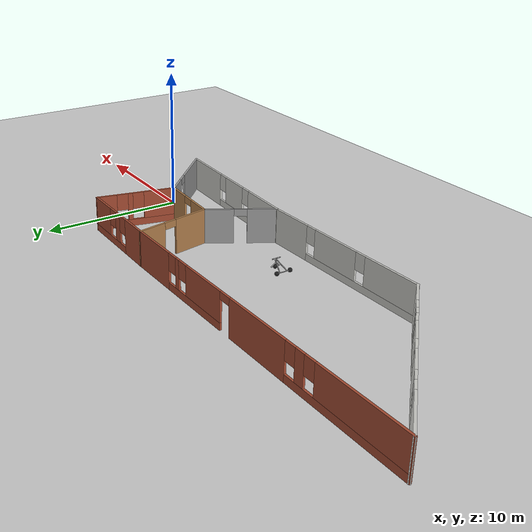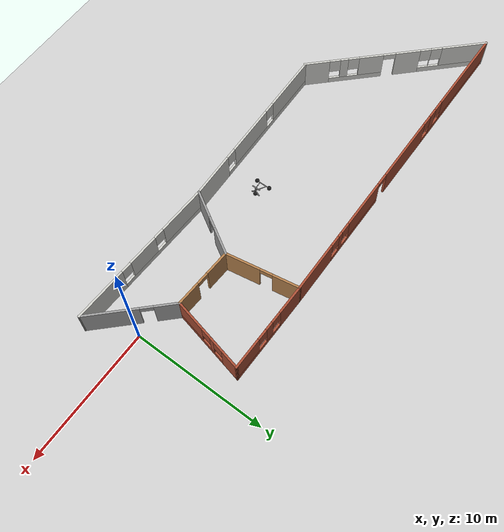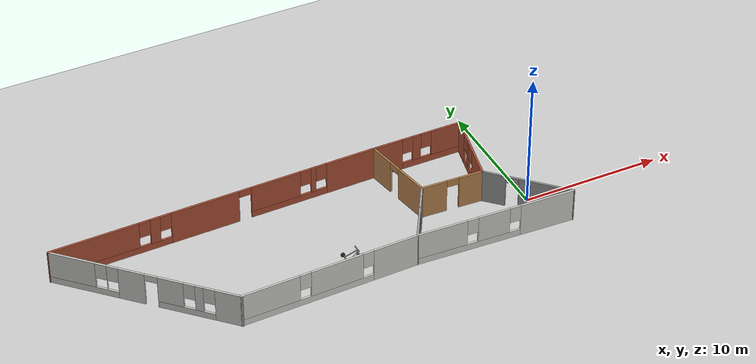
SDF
<sdf version="1.6">
 <world name="default">
  <model name="ground_plane">
   <static>1</static>
   <link name="link">
    <collision name="collision">
     <geometry><plane><normal>0 0 1</normal><size>100 100</size></plane></geometry>
     <surface>
      <contact><collide_bitmask>65535</collide_bitmask></contact>
      <friction><ode><mu>100</mu><mu2>50</mu2></ode></friction>
     </surface>
    </collision>
    <visual name="visual">
     <cast_shadows>0</cast_shadows>
     <geometry><plane><normal>0 0 1</normal><size>100 100</size></plane></geometry>
     <material>
      <script><uri>file://media/materials/scripts/gazebo.material</uri><name>Gazebo/Grey</name></script>
     </material>
    </visual>
   </link>
  </model>
  <model name="world2.world">
   <pose>-15.0932 1.90724 0 0 -0 0</pose>
   <link name="Wall_12">
    <pose>-4.95249 4.76552 0 0 0 -3.12282</pose>
    <visual name="Wall_12_Visual_0">
     <pose>-10.0777 0 1.25 0 -0 0</pose>
     <geometry><box><size>3.72695 0.15 2.5</size></box></geometry>
     <material>
      <script><uri>file://media/materials/scripts/gazebo.material</uri><name>Gazebo/Bricks</name></script>
      <ambient>1 1 1 1</ambient>
     </material>
     <meta><layer>0</layer></meta>
    </visual>
    <collision name="Wall_12_Collision_0">
     <geometry><box><size>3.72695 0.15 2.5</size></box></geometry>
     <pose>-10.0777 0 1.25 0 -0 0</pose>
    </collision>
    <visual name="Wall_12_Visual_1">
     <pose>0.770194 0 1.25 0 -0 0</pose>
     <geometry><box><size>4.93565 0.15 2.5</size></box></geometry>
     <material>
      <script><uri>file://media/materials/scripts/gazebo.material</uri><name>Gazebo/Bricks</name></script>
      <ambient>1 1 1 1</ambient>
     </material>
     <meta><layer>0</layer></meta>
    </visual>
    <collision name="Wall_12_Collision_1">
     <geometry><box><size>4.93565 0.15 2.5</size></box></geometry>
     <pose>0.770194 0 1.25 0 -0 0</pose>
    </collision>
    <visual name="Wall_12_Visual_2">
     <pose>-5.40592 0 0.25 0 -0 0</pose>
     <geometry><box><size>5.61658 0.15 0.5</size></box></geometry>
     <material>
      <script><uri>file://media/materials/scripts/gazebo.material</uri><name>Gazebo/Bricks</name></script>
      <ambient>1 1 1 1</ambient>
     </material>
     <meta><layer>0</layer></meta>
    </visual>
    <collision name="Wall_12_Collision_2">
     <geometry><box><size>5.61658 0.15 0.5</size></box></geometry>
     <pose>-5.40592 0 0.25 0 -0 0</pose>
    </collision>
    <visual name="Wall_12_Visual_3">
     <pose>7.58959 0 0.25 0 -0 0</pose>
     <geometry><box><size>8.70314 0.15 0.5</size></box></geometry>
     <material>
      <script><uri>file://media/materials/scripts/gazebo.material</uri><name>Gazebo/Bricks</name></script>
      <ambient>1 1 1 1</ambient>
     </material>
     <meta><layer>0</layer></meta>
    </visual>
    <collision name="Wall_12_Collision_3">
     <geometry><box><size>8.70314 0.15 0.5</size></box></geometry>
     <pose>7.58959 0 0.25 0 -0 0</pose>
    </collision>
    <visual name="Wall_12_Visual_4">
     <pose>-7.22695 0 1.5 0 -0 0</pose>
     <geometry><box><size>0.374523 0.15 2</size></box></geometry>
     <material>
      <script><uri>file://media/materials/scripts/gazebo.material</uri><name>Gazebo/Bricks</name></script>
      <ambient>1 1 1 1</ambient>
     </material>
     <meta><layer>0</layer></meta>
    </visual>
    <collision name="Wall_12_Collision_4">
     <geometry><box><size>0.374523 0.15 2</size></box></geometry>
     <pose>-7.22695 0 1.5 0 -0 0</pose>
    </collision>
    <visual name="Wall_12_Visual_5">
     <pose>-4.41866 0 1.5 0 -0 0</pose>
     <geometry><box><size>3.64206 0.15 2</size></box></geometry>
     <material>
      <script><uri>file://media/materials/scripts/gazebo.material</uri><name>Gazebo/Bricks</name></script>
      <ambient>1 1 1 1</ambient>
     </material>
     <meta><layer>0</layer></meta>
    </visual>
    <collision name="Wall_12_Collision_5">
     <geometry><box><size>3.64206 0.15 2</size></box></geometry>
     <pose>-4.41866 0 1.5 0 -0 0</pose>
    </collision>
    <visual name="Wall_12_Visual_6">
     <pose>-4.41866 0 1.5 0 -0 0</pose>
     <geometry><box><size>3.64206 0.15 2</size></box></geometry>
     <material>
      <script><uri>file://media/materials/scripts/gazebo.material</uri><name>Gazebo/Bricks</name></script>
      <ambient>1 1 1 1</ambient>
     </material>
     <meta><layer>0</layer></meta>
    </visual>
    <collision name="Wall_12_Collision_6">
     <geometry><box><size>3.64206 0.15 2</size></box></geometry>
     <pose>-4.41866 0 1.5 0 -0 0</pose>
    </collision>
    <visual name="Wall_12_Visual_7">
     <pose>4.38859 0 1.5 0 -0 0</pose>
     <geometry><box><size>0.70115 0.15 2</size></box></geometry>
     <material>
      <script><uri>file://media/materials/scripts/gazebo.material</uri><name>Gazebo/Bricks</name></script>
      <ambient>1 1 1 1</ambient>
     </material>
     <meta><layer>0</layer></meta>
    </visual>
    <collision name="Wall_12_Collision_7">
     <geometry><box><size>0.70115 0.15 2</size></box></geometry>
     <pose>4.38859 0 1.5 0 -0 0</pose>
    </collision>
    <visual name="Wall_12_Visual_8">
     <pose>8.74016 0 1.5 0 -0 0</pose>
     <geometry><box><size>6.40199 0.15 2</size></box></geometry>
     <material>
      <script><uri>file://media/materials/scripts/gazebo.material</uri><name>Gazebo/Bricks</name></script>
      <ambient>1 1 1 1</ambient>
     </material>
     <meta><layer>0</layer></meta>
    </visual>
    <collision name="Wall_12_Collision_8">
     <geometry><box><size>6.40199 0.15 2</size></box></geometry>
     <pose>8.74016 0 1.5 0 -0 0</pose>
    </collision>
    <visual name="Wall_12_Visual_9">
     <pose>-7.81421 0 1.9 0 -0 0</pose>
     <geometry><box><size>0.8 0.15 1.2</size></box></geometry>
     <material>
      <script><uri>file://media/materials/scripts/gazebo.material</uri><name>Gazebo/Bricks</name></script>
      <ambient>1 1 1 1</ambient>
     </material>
     <meta><layer>0</layer></meta>
    </visual>
    <collision name="Wall_12_Collision_9">
     <geometry><box><size>0.8 0.15 1.2</size></box></geometry>
     <pose>-7.81421 0 1.9 0 -0 0</pose>
    </collision>
    <visual name="Wall_12_Visual_10">
     <pose>3.63802 0 1.9 0 -0 0</pose>
     <geometry><box><size>0.8 0.15 1.2</size></box></geometry>
     <material>
      <script><uri>file://media/materials/scripts/gazebo.material</uri><name>Gazebo/Bricks</name></script>
      <ambient>1 1 1 1</ambient>
     </material>
     <meta><layer>0</layer></meta>
    </visual>
    <collision name="Wall_12_Collision_10">
     <geometry><box><size>0.8 0.15 1.2</size></box></geometry>
     <pose>3.63802 0 1.9 0 -0 0</pose>
    </collision>
    <visual name="Wall_12_Visual_11">
     <pose>-6.63969 0 1.9 0 -0 0</pose>
     <geometry><box><size>0.8 0.15 1.2</size></box></geometry>
     <material>
      <script><uri>file://media/materials/scripts/gazebo.material</uri><name>Gazebo/Bricks</name></script>
      <ambient>1 1 1 1</ambient>
     </material>
     <meta><layer>0</layer></meta>
    </visual>
    <collision name="Wall_12_Collision_11">
     <geometry><box><size>0.8 0.15 1.2</size></box></geometry>
     <pose>-6.63969 0 1.9 0 -0 0</pose>
    </collision>
    <visual name="Wall_12_Visual_12">
     <pose>5.13917 0 1.9 0 -0 0</pose>
     <geometry><box><size>0.8 0.15 1.2</size></box></geometry>
     <material>
      <script><uri>file://media/materials/scripts/gazebo.material</uri><name>Gazebo/Bricks</name></script>
      <ambient>1 1 1 1</ambient>
     </material>
     <meta><layer>0</layer></meta>
    </visual>
    <collision name="Wall_12_Collision_12">
     <geometry><box><size>0.8 0.15 1.2</size></box></geometry>
     <pose>5.13917 0 1.9 0 -0 0</pose>
    </collision>
    <visual name="Wall_12_Visual_13">
     <pose>-2.14763 0 2.25 0 -0 0</pose>
     <geometry><box><size>0.9 0.15 0.5</size></box></geometry>
     <material>
      <script><uri>file://media/materials/scripts/gazebo.material</uri><name>Gazebo/Bricks</name></script>
      <ambient>1 1 1 1</ambient>
     </material>
     <meta><layer>0</layer></meta>
    </visual>
    <collision name="Wall_12_Collision_13">
     <geometry><box><size>0.9 0.15 0.5</size></box></geometry>
     <pose>-2.14763 0 2.25 0 -0 0</pose>
    </collision>
    <visual name="Wall_12_Visual_14">
     <pose>-2.14763 0 2.25 0 -0 0</pose>
     <geometry><box><size>0.9 0.15 0.5</size></box></geometry>
     <material>
      <script><uri>file://media/materials/scripts/gazebo.material</uri><name>Gazebo/Bricks</name></script>
      <ambient>1 1 1 1</ambient>
     </material>
     <meta><layer>0</layer></meta>
    </visual>
    <collision name="Wall_12_Collision_14">
     <geometry><box><size>0.9 0.15 0.5</size></box></geometry>
     <pose>-2.14763 0 2.25 0 -0 0</pose>
    </collision>
   </link>
   <link name="Wall_14">
    <pose>10.0928 -0.379224 0 0 -0 3.09595</pose>
    <visual name="Wall_14_Visual_0">
     <pose>-1.40364 0 1.25 0 -0 0</pose>
     <geometry><box><size>1.81471 0.15 2.5</size></box></geometry>
     <material>
      <script><uri>file://media/materials/scripts/gazebo.material</uri><name>Gazebo/Wood</name></script>
      <ambient>1 1 1 1</ambient>
     </material>
     <meta><layer>0</layer></meta>
    </visual>
    <collision name="Wall_14_Collision_0">
     <geometry><box><size>1.81471 0.15 2.5</size></box></geometry>
     <pose>-1.40364 0 1.25 0 -0 0</pose>
    </collision>
    <visual name="Wall_14_Visual_1">
     <pose>1.35736 0 1.25 0 -0 0</pose>
     <geometry><box><size>1.90729 0.15 2.5</size></box></geometry>
     <material>
      <script><uri>file://media/materials/scripts/gazebo.material</uri><name>Gazebo/Wood</name></script>
      <ambient>1 1 1 1</ambient>
     </material>
     <meta><layer>0</layer></meta>
    </visual>
    <collision name="Wall_14_Collision_1">
     <geometry><box><size>1.90729 0.15 2.5</size></box></geometry>
     <pose>1.35736 0 1.25 0 -0 0</pose>
    </collision>
    <visual name="Wall_14_Visual_2">
     <pose>-0.046289 0 2.25 0 -0 0</pose>
     <geometry><box><size>0.9 0.15 0.5</size></box></geometry>
     <material>
      <script><uri>file://media/materials/scripts/gazebo.material</uri><name>Gazebo/Wood</name></script>
      <ambient>1 1 1 1</ambient>
     </material>
     <meta><layer>0</layer></meta>
    </visual>
    <collision name="Wall_14_Collision_2">
     <geometry><box><size>0.9 0.15 0.5</size></box></geometry>
     <pose>-0.046289 0 2.25 0 -0 0</pose>
    </collision>
   </link>
   <link name="Wall_15">
    <pose>7.38534 2.35554 0 0 -0 1.74884</pose>
    <visual name="Wall_15_Visual_0">
     <pose>-1.46156 0 1.25 0 -0 0</pose>
     <geometry><box><size>2.57692 0.15 2.5</size></box></geometry>
     <material>
      <script><uri>file://media/materials/scripts/gazebo.material</uri><name>Gazebo/Wood</name></script>
      <ambient>1 1 1 1</ambient>
     </material>
     <meta><layer>0</layer></meta>
    </visual>
    <collision name="Wall_15_Collision_0">
     <geometry><box><size>2.57692 0.15 2.5</size></box></geometry>
     <pose>-1.46156 0 1.25 0 -0 0</pose>
    </collision>
    <visual name="Wall_15_Visual_1">
     <pose>1.73846 0 1.25 0 -0 0</pose>
     <geometry><box><size>2.02311 0.15 2.5</size></box></geometry>
     <material>
      <script><uri>file://media/materials/scripts/gazebo.material</uri><name>Gazebo/Wood</name></script>
      <ambient>1 1 1 1</ambient>
     </material>
     <meta><layer>0</layer></meta>
    </visual>
    <collision name="Wall_15_Collision_1">
     <geometry><box><size>2.02311 0.15 2.5</size></box></geometry>
     <pose>1.73846 0 1.25 0 -0 0</pose>
    </collision>
    <visual name="Wall_15_Visual_2">
     <pose>0.276903 0 2.25 0 -0 0</pose>
     <geometry><box><size>0.9 0.15 0.5</size></box></geometry>
     <material>
      <script><uri>file://media/materials/scripts/gazebo.material</uri><name>Gazebo/Wood</name></script>
      <ambient>1 1 1 1</ambient>
     </material>
     <meta><layer>0</layer></meta>
    </visual>
    <collision name="Wall_15_Collision_2">
     <geometry><box><size>0.9 0.15 0.5</size></box></geometry>
     <pose>0.276903 0 2.25 0 -0 0</pose>
    </collision>
   </link>
   <link name="Wall_16">
    <pose>10.2116 4.98827 0 0 -0 0</pose>
    <visual name="Wall_16_Visual_0">
     <pose>-2.26625 0 1.25 0 -0 0</pose>
     <geometry><box><size>2.21751 0.15 2.5</size></box></geometry>
     <material>
      <script><uri>file://media/materials/scripts/gazebo.material</uri><name>Gazebo/Bricks</name></script>
      <ambient>1 1 1 1</ambient>
     </material>
     <meta><layer>0</layer></meta>
    </visual>
    <collision name="Wall_16_Collision_0">
     <geometry><box><size>2.21751 0.15 2.5</size></box></geometry>
     <pose>-2.26625 0 1.25 0 -0 0</pose>
    </collision>
    <visual name="Wall_16_Visual_1">
     <pose>1.10875 0 0.25 0 -0 0</pose>
     <geometry><box><size>4.53249 0.15 0.5</size></box></geometry>
     <material>
      <script><uri>file://media/materials/scripts/gazebo.material</uri><name>Gazebo/Bricks</name></script>
      <ambient>1 1 1 1</ambient>
     </material>
     <meta><layer>0</layer></meta>
    </visual>
    <collision name="Wall_16_Collision_1">
     <geometry><box><size>4.53249 0.15 0.5</size></box></geometry>
     <pose>1.10875 0 0.25 0 -0 0</pose>
    </collision>
    <visual name="Wall_16_Visual_2">
     <pose>-0.049523 0 1.5 0 -0 0</pose>
     <geometry><box><size>0.615945 0.15 2</size></box></geometry>
     <material>
      <script><uri>file://media/materials/scripts/gazebo.material</uri><name>Gazebo/Bricks</name></script>
      <ambient>1 1 1 1</ambient>
     </material>
     <meta><layer>0</layer></meta>
    </visual>
    <collision name="Wall_16_Collision_2">
     <geometry><box><size>0.615945 0.15 2</size></box></geometry>
     <pose>-0.049523 0 1.5 0 -0 0</pose>
    </collision>
    <visual name="Wall_16_Visual_3">
     <pose>2.21672 0 1.5 0 -0 0</pose>
     <geometry><box><size>2.31655 0.15 2</size></box></geometry>
     <material>
      <script><uri>file://media/materials/scripts/gazebo.material</uri><name>Gazebo/Bricks</name></script>
      <ambient>1 1 1 1</ambient>
     </material>
     <meta><layer>0</layer></meta>
    </visual>
    <collision name="Wall_16_Collision_3">
     <geometry><box><size>2.31655 0.15 2</size></box></geometry>
     <pose>2.21672 0 1.5 0 -0 0</pose>
    </collision>
    <visual name="Wall_16_Visual_4">
     <pose>-0.757495 0 1.9 0 -0 0</pose>
     <geometry><box><size>0.8 0.15 1.2</size></box></geometry>
     <material>
      <script><uri>file://media/materials/scripts/gazebo.material</uri><name>Gazebo/Bricks</name></script>
      <ambient>1 1 1 1</ambient>
     </material>
     <meta><layer>0</layer></meta>
    </visual>
    <collision name="Wall_16_Collision_4">
     <geometry><box><size>0.8 0.15 1.2</size></box></geometry>
     <pose>-0.757495 0 1.9 0 -0 0</pose>
    </collision>
    <visual name="Wall_16_Visual_5">
     <pose>0.65845 0 1.9 0 -0 0</pose>
     <geometry><box><size>0.8 0.15 1.2</size></box></geometry>
     <material>
      <script><uri>file://media/materials/scripts/gazebo.material</uri><name>Gazebo/Bricks</name></script>
      <ambient>1 1 1 1</ambient>
     </material>
     <meta><layer>0</layer></meta>
    </visual>
    <collision name="Wall_16_Collision_5">
     <geometry><box><size>0.8 0.15 1.2</size></box></geometry>
     <pose>0.65845 0 1.9 0 -0 0</pose>
    </collision>
   </link>
   <link name="Wall_17">
    <pose>12.919 2.25351 0 0 0 -1.78418</pose>
    <visual name="Wall_17_Visual_0">
     <pose>-2.14884 0 1.25 0 -0 0</pose>
     <geometry><box><size>1.44877 0.15 2.5</size></box></geometry>
     <material>
      <script><uri>file://media/materials/scripts/gazebo.material</uri><name>Gazebo/Bricks</name></script>
      <ambient>1 1 1 1</ambient>
     </material>
     <meta><layer>0</layer></meta>
    </visual>
    <collision name="Wall_17_Collision_0">
     <geometry><box><size>1.44877 0.15 2.5</size></box></geometry>
     <pose>-2.14884 0 1.25 0 -0 0</pose>
    </collision>
    <visual name="Wall_17_Visual_1">
     <pose>0.724385 0 0.25 0 -0 0</pose>
     <geometry><box><size>4.29768 0.15 0.5</size></box></geometry>
     <material>
      <script><uri>file://media/materials/scripts/gazebo.material</uri><name>Gazebo/Bricks</name></script>
      <ambient>1 1 1 1</ambient>
     </material>
     <meta><layer>0</layer></meta>
    </visual>
    <collision name="Wall_17_Collision_1">
     <geometry><box><size>4.29768 0.15 0.5</size></box></geometry>
     <pose>0.724385 0 0.25 0 -0 0</pose>
    </collision>
    <visual name="Wall_17_Visual_2">
     <pose>-0.451153 0 1.5 0 -0 0</pose>
     <geometry><box><size>0.346603 0.15 2</size></box></geometry>
     <material>
      <script><uri>file://media/materials/scripts/gazebo.material</uri><name>Gazebo/Bricks</name></script>
      <ambient>1 1 1 1</ambient>
     </material>
     <meta><layer>0</layer></meta>
    </visual>
    <collision name="Wall_17_Collision_2">
     <geometry><box><size>0.346603 0.15 2</size></box></geometry>
     <pose>-0.451153 0 1.5 0 -0 0</pose>
    </collision>
    <visual name="Wall_17_Visual_3">
     <pose>1.69769 0 1.5 0 -0 0</pose>
     <geometry><box><size>2.35108 0.15 2</size></box></geometry>
     <material>
      <script><uri>file://media/materials/scripts/gazebo.material</uri><name>Gazebo/Bricks</name></script>
      <ambient>1 1 1 1</ambient>
     </material>
     <meta><layer>0</layer></meta>
    </visual>
    <collision name="Wall_17_Collision_3">
     <geometry><box><size>2.35108 0.15 2</size></box></geometry>
     <pose>1.69769 0 1.5 0 -0 0</pose>
    </collision>
    <visual name="Wall_17_Visual_4">
     <pose>-1.02445 0 1.9 0 -0 0</pose>
     <geometry><box><size>0.8 0.15 1.2</size></box></geometry>
     <material>
      <script><uri>file://media/materials/scripts/gazebo.material</uri><name>Gazebo/Bricks</name></script>
      <ambient>1 1 1 1</ambient>
     </material>
     <meta><layer>0</layer></meta>
    </visual>
    <collision name="Wall_17_Collision_4">
     <geometry><box><size>0.8 0.15 1.2</size></box></geometry>
     <pose>-1.02445 0 1.9 0 -0 0</pose>
    </collision>
    <visual name="Wall_17_Visual_5">
     <pose>0.122148 0 1.9 0 -0 0</pose>
     <geometry><box><size>0.8 0.15 1.2</size></box></geometry>
     <material>
      <script><uri>file://media/materials/scripts/gazebo.material</uri><name>Gazebo/Bricks</name></script>
      <ambient>1 1 1 1</ambient>
     </material>
     <meta><layer>0</layer></meta>
    </visual>
    <collision name="Wall_17_Collision_5">
     <geometry><box><size>0.8 0.15 1.2</size></box></geometry>
     <pose>0.122148 0 1.9 0 -0 0</pose>
    </collision>
   </link>
   <link name="Wall_18">
    <pose>14.5715 -2.72632 0 0 0 -0.785398</pose>
    <visual name="Wall_18_Visual_0">
     <pose>-2.37906 0 1.25 0 -0 0</pose>
     <geometry><box><size>1.74188 0.15 2.5</size></box></geometry>
     <material>
      <script><uri>file://media/materials/scripts/gazebo.material</uri><name>Gazebo/Grey</name></script>
      <ambient>1 1 1 1</ambient>
     </material>
     <meta><layer>0</layer></meta>
    </visual>
    <collision name="Wall_18_Collision_0">
     <geometry><box><size>1.74188 0.15 2.5</size></box></geometry>
     <pose>-2.37906 0 1.25 0 -0 0</pose>
    </collision>
    <visual name="Wall_18_Visual_1">
     <pose>1.32094 0 1.25 0 -0 0</pose>
     <geometry><box><size>3.85812 0.15 2.5</size></box></geometry>
     <material>
      <script><uri>file://media/materials/scripts/gazebo.material</uri><name>Gazebo/Grey</name></script>
      <ambient>1 1 1 1</ambient>
     </material>
     <meta><layer>0</layer></meta>
    </visual>
    <collision name="Wall_18_Collision_1">
     <geometry><box><size>3.85812 0.15 2.5</size></box></geometry>
     <pose>1.32094 0 1.25 0 -0 0</pose>
    </collision>
    <visual name="Wall_18_Visual_2">
     <pose>-1.05812 0 2.25 0 -0 0</pose>
     <geometry><box><size>0.9 0.15 0.5</size></box></geometry>
     <material>
      <script><uri>file://media/materials/scripts/gazebo.material</uri><name>Gazebo/Grey</name></script>
      <ambient>1 1 1 1</ambient>
     </material>
     <meta><layer>0</layer></meta>
    </visual>
    <collision name="Wall_18_Collision_2">
     <geometry><box><size>0.9 0.15 0.5</size></box></geometry>
     <pose>-1.05812 0 2.25 0 -0 0</pose>
    </collision>
   </link>
   <link name="Wall_19">
    <pose>11.0947 -4.7397 0 0 -0 3.10112</pose>
    <visual name="Wall_19_Visual_0">
     <pose>-3.79919 0 1.25 0 -0 0</pose>
     <geometry><box><size>4.00465 0.15 2.5</size></box></geometry>
     <material>
      <script><uri>file://media/materials/scripts/gazebo.material</uri><name>Gazebo/CeilingTiled</name></script>
      <ambient>1 1 1 1</ambient>
     </material>
     <meta><layer>0</layer></meta>
    </visual>
    <collision name="Wall_19_Collision_0">
     <geometry><box><size>4.00465 0.15 2.5</size></box></geometry>
     <pose>-3.79919 0 1.25 0 -0 0</pose>
    </collision>
    <visual name="Wall_19_Visual_1">
     <pose>2.00233 0 0.25 0 -0 0</pose>
     <geometry><box><size>7.59837 0.15 0.5</size></box></geometry>
     <material>
      <script><uri>file://media/materials/scripts/gazebo.material</uri><name>Gazebo/CeilingTiled</name></script>
      <ambient>1 1 1 1</ambient>
     </material>
     <meta><layer>0</layer></meta>
    </visual>
    <collision name="Wall_19_Collision_1">
     <geometry><box><size>7.59837 0.15 0.5</size></box></geometry>
     <pose>2.00233 0 0.25 0 -0 0</pose>
    </collision>
    <visual name="Wall_19_Visual_2">
     <pose>0.162679 0 1.5 0 -0 0</pose>
     <geometry><box><size>2.31908 0.15 2</size></box></geometry>
     <material>
      <script><uri>file://media/materials/scripts/gazebo.material</uri><name>Gazebo/CeilingTiled</name></script>
      <ambient>1 1 1 1</ambient>
     </material>
     <meta><layer>0</layer></meta>
    </visual>
    <collision name="Wall_19_Collision_2">
     <geometry><box><size>2.31908 0.15 2</size></box></geometry>
     <pose>0.162679 0 1.5 0 -0 0</pose>
    </collision>
    <visual name="Wall_19_Visual_3">
     <pose>3.96186 0 1.5 0 -0 0</pose>
     <geometry><box><size>3.6793 0.15 2</size></box></geometry>
     <material>
      <script><uri>file://media/materials/scripts/gazebo.material</uri><name>Gazebo/CeilingTiled</name></script>
      <ambient>1 1 1 1</ambient>
     </material>
     <meta><layer>0</layer></meta>
    </visual>
    <collision name="Wall_19_Collision_3">
     <geometry><box><size>3.6793 0.15 2</size></box></geometry>
     <pose>3.96186 0 1.5 0 -0 0</pose>
    </collision>
    <visual name="Wall_19_Visual_4">
     <pose>-1.39686 0 1.9 0 -0 0</pose>
     <geometry><box><size>0.8 0.15 1.2</size></box></geometry>
     <material>
      <script><uri>file://media/materials/scripts/gazebo.material</uri><name>Gazebo/CeilingTiled</name></script>
      <ambient>1 1 1 1</ambient>
     </material>
     <meta><layer>0</layer></meta>
    </visual>
    <collision name="Wall_19_Collision_4">
     <geometry><box><size>0.8 0.15 1.2</size></box></geometry>
     <pose>-1.39686 0 1.9 0 -0 0</pose>
    </collision>
    <visual name="Wall_19_Visual_5">
     <pose>1.72222 0 1.9 0 -0 0</pose>
     <geometry><box><size>0.8 0.15 1.2</size></box></geometry>
     <material>
      <script><uri>file://media/materials/scripts/gazebo.material</uri><name>Gazebo/CeilingTiled</name></script>
      <ambient>1 1 1 1</ambient>
     </material>
     <meta><layer>0</layer></meta>
    </visual>
    <collision name="Wall_19_Collision_5">
     <geometry><box><size>0.8 0.15 1.2</size></box></geometry>
     <pose>1.72222 0 1.9 0 -0 0</pose>
    </collision>
   </link>
   <link name="Wall_3">
    <pose>-12.0834 -0.199836 0 0 -0 2.35519</pose>
    <visual name="Wall_3_Visual_0">
     <pose>-5.82367 0 1.25 0 -0 0</pose>
     <geometry><box><size>1.90335 0.15 2.5</size></box></geometry>
     <material>
      <script><uri>file://media/materials/scripts/gazebo.material</uri><name>Gazebo/CeilingTiled</name></script>
      <ambient>1 1 1 1</ambient>
     </material>
     <meta><layer>0</layer></meta>
    </visual>
    <collision name="Wall_3_Collision_0">
     <geometry><box><size>1.90335 0.15 2.5</size></box></geometry>
     <pose>-5.82367 0 1.25 0 -0 0</pose>
    </collision>
    <visual name="Wall_3_Visual_1">
     <pose>0.902226 0 1.25 0 -0 0</pose>
     <geometry><box><size>1.83923 0.15 2.5</size></box></geometry>
     <material>
      <script><uri>file://media/materials/scripts/gazebo.material</uri><name>Gazebo/CeilingTiled</name></script>
      <ambient>1 1 1 1</ambient>
     </material>
     <meta><layer>0</layer></meta>
    </visual>
    <collision name="Wall_3_Collision_1">
     <geometry><box><size>1.83923 0.15 2.5</size></box></geometry>
     <pose>0.902226 0 1.25 0 -0 0</pose>
    </collision>
    <visual name="Wall_3_Visual_2">
     <pose>-2.89469 0 0.25 0 -0 0</pose>
     <geometry><box><size>3.95461 0.15 0.5</size></box></geometry>
     <material>
      <script><uri>file://media/materials/scripts/gazebo.material</uri><name>Gazebo/CeilingTiled</name></script>
      <ambient>1 1 1 1</ambient>
     </material>
     <meta><layer>0</layer></meta>
    </visual>
    <collision name="Wall_3_Collision_2">
     <geometry><box><size>3.95461 0.15 0.5</size></box></geometry>
     <pose>-2.89469 0 0.25 0 -0 0</pose>
    </collision>
    <visual name="Wall_3_Visual_3">
     <pose>4.29859 0 0.25 0 -0 0</pose>
     <geometry><box><size>4.95351 0.15 0.5</size></box></geometry>
     <material>
      <script><uri>file://media/materials/scripts/gazebo.material</uri><name>Gazebo/CeilingTiled</name></script>
      <ambient>1 1 1 1</ambient>
     </material>
     <meta><layer>0</layer></meta>
    </visual>
    <collision name="Wall_3_Collision_3">
     <geometry><box><size>4.95351 0.15 0.5</size></box></geometry>
     <pose>4.29859 0 0.25 0 -0 0</pose>
    </collision>
    <visual name="Wall_3_Visual_4">
     <pose>-3.78562 0 1.5 0 -0 0</pose>
     <geometry><box><size>0.572763 0.15 2</size></box></geometry>
     <material>
      <script><uri>file://media/materials/scripts/gazebo.material</uri><name>Gazebo/CeilingTiled</name></script>
      <ambient>1 1 1 1</ambient>
     </material>
     <meta><layer>0</layer></meta>
    </visual>
    <collision name="Wall_3_Collision_4">
     <geometry><box><size>0.572763 0.15 2</size></box></geometry>
     <pose>-3.78562 0 1.5 0 -0 0</pose>
    </collision>
    <visual name="Wall_3_Visual_5">
     <pose>-1.80831 0 1.5 0 -0 0</pose>
     <geometry><box><size>1.78185 0.15 2</size></box></geometry>
     <material>
      <script><uri>file://media/materials/scripts/gazebo.material</uri><name>Gazebo/CeilingTiled</name></script>
      <ambient>1 1 1 1</ambient>
     </material>
     <meta><layer>0</layer></meta>
    </visual>
    <collision name="Wall_3_Collision_5">
     <geometry><box><size>1.78185 0.15 2</size></box></geometry>
     <pose>-1.80831 0 1.5 0 -0 0</pose>
    </collision>
    <visual name="Wall_3_Visual_6">
     <pose>-1.80831 0 1.5 0 -0 0</pose>
     <geometry><box><size>1.78185 0.15 2</size></box></geometry>
     <material>
      <script><uri>file://media/materials/scripts/gazebo.material</uri><name>Gazebo/CeilingTiled</name></script>
      <ambient>1 1 1 1</ambient>
     </material>
     <meta><layer>0</layer></meta>
    </visual>
    <collision name="Wall_3_Collision_6">
     <geometry><box><size>1.78185 0.15 2</size></box></geometry>
     <pose>-1.80831 0 1.5 0 -0 0</pose>
    </collision>
    <visual name="Wall_3_Visual_7">
     <pose>2.62227 0 1.5 0 -0 0</pose>
     <geometry><box><size>0.000865 0.15 2</size></box></geometry>
     <material>
      <script><uri>file://media/materials/scripts/gazebo.material</uri><name>Gazebo/CeilingTiled</name></script>
      <ambient>1 1 1 1</ambient>
     </material>
     <meta><layer>0</layer></meta>
    </visual>
    <collision name="Wall_3_Collision_7">
     <geometry><box><size>0.000865 0.15 2</size></box></geometry>
     <pose>2.62227 0 1.5 0 -0 0</pose>
    </collision>
    <visual name="Wall_3_Visual_8">
     <pose>5.09903 0 1.5 0 -0 0</pose>
     <geometry><box><size>3.35264 0.15 2</size></box></geometry>
     <material>
      <script><uri>file://media/materials/scripts/gazebo.material</uri><name>Gazebo/CeilingTiled</name></script>
      <ambient>1 1 1 1</ambient>
     </material>
     <meta><layer>0</layer></meta>
    </visual>
    <collision name="Wall_3_Collision_8">
     <geometry><box><size>3.35264 0.15 2</size></box></geometry>
     <pose>5.09903 0 1.5 0 -0 0</pose>
    </collision>
    <visual name="Wall_3_Visual_9">
     <pose>-4.472 0 1.9 0 -0 0</pose>
     <geometry><box><size>0.8 0.15 1.2</size></box></geometry>
     <material>
      <script><uri>file://media/materials/scripts/gazebo.material</uri><name>Gazebo/CeilingTiled</name></script>
      <ambient>1 1 1 1</ambient>
     </material>
     <meta><layer>0</layer></meta>
    </visual>
    <collision name="Wall_3_Collision_9">
     <geometry><box><size>0.8 0.15 1.2</size></box></geometry>
     <pose>-4.472 0 1.9 0 -0 0</pose>
    </collision>
    <visual name="Wall_3_Visual_10">
     <pose>2.22184 0 1.9 0 -0 0</pose>
     <geometry><box><size>0.8 0.15 1.2</size></box></geometry>
     <material>
      <script><uri>file://media/materials/scripts/gazebo.material</uri><name>Gazebo/CeilingTiled</name></script>
      <ambient>1 1 1 1</ambient>
     </material>
     <meta><layer>0</layer></meta>
    </visual>
    <collision name="Wall_3_Collision_10">
     <geometry><box><size>0.8 0.15 1.2</size></box></geometry>
     <pose>2.22184 0 1.9 0 -0 0</pose>
    </collision>
    <visual name="Wall_3_Visual_11">
     <pose>-3.09924 0 1.9 0 -0 0</pose>
     <geometry><box><size>0.8 0.15 1.2</size></box></geometry>
     <material>
      <script><uri>file://media/materials/scripts/gazebo.material</uri><name>Gazebo/CeilingTiled</name></script>
      <ambient>1 1 1 1</ambient>
     </material>
     <meta><layer>0</layer></meta>
    </visual>
    <collision name="Wall_3_Collision_11">
     <geometry><box><size>0.8 0.15 1.2</size></box></geometry>
     <pose>-3.09924 0 1.9 0 -0 0</pose>
    </collision>
    <visual name="Wall_3_Visual_12">
     <pose>3.02271 0 1.9 0 -0 0</pose>
     <geometry><box><size>0.8 0.15 1.2</size></box></geometry>
     <material>
      <script><uri>file://media/materials/scripts/gazebo.material</uri><name>Gazebo/CeilingTiled</name></script>
      <ambient>1 1 1 1</ambient>
     </material>
     <meta><layer>0</layer></meta>
    </visual>
    <collision name="Wall_3_Collision_12">
     <geometry><box><size>0.8 0.15 1.2</size></box></geometry>
     <pose>3.02271 0 1.9 0 -0 0</pose>
    </collision>
    <visual name="Wall_3_Visual_13">
     <pose>-0.467389 0 2.25 0 -0 0</pose>
     <geometry><box><size>0.9 0.15 0.5</size></box></geometry>
     <material>
      <script><uri>file://media/materials/scripts/gazebo.material</uri><name>Gazebo/CeilingTiled</name></script>
      <ambient>1 1 1 1</ambient>
     </material>
     <meta><layer>0</layer></meta>
    </visual>
    <collision name="Wall_3_Collision_13">
     <geometry><box><size>0.9 0.15 0.5</size></box></geometry>
     <pose>-0.467389 0 2.25 0 -0 0</pose>
    </collision>
    <visual name="Wall_3_Visual_14">
     <pose>-0.467389 0 2.25 0 -0 0</pose>
     <geometry><box><size>0.9 0.15 0.5</size></box></geometry>
     <material>
      <script><uri>file://media/materials/scripts/gazebo.material</uri><name>Gazebo/CeilingTiled</name></script>
      <ambient>1 1 1 1</ambient>
     </material>
     <meta><layer>0</layer></meta>
    </visual>
    <collision name="Wall_3_Collision_14">
     <geometry><box><size>0.9 0.15 0.5</size></box></geometry>
     <pose>-0.467389 0 2.25 0 -0 0</pose>
    </collision>
   </link>
   <link name="Wall_8">
    <pose>6.616 -2.3926 0 0 -0 1.03952</pose>
    <visual name="Wall_8_Visual_0">
     <pose>-1.49065 0 1.25 0 -0 0</pose>
     <geometry><box><size>2.07593 0.15 2.5</size></box></geometry>
     <material>
      <script><uri>file://media/materials/scripts/gazebo.material</uri><name>Gazebo/Grey</name></script>
      <ambient>0 0 0 0</ambient>
     </material>
     <meta><layer>0</layer></meta>
    </visual>
    <collision name="Wall_8_Collision_0">
     <geometry><box><size>2.07593 0.15 2.5</size></box></geometry>
     <pose>-1.49065 0 1.25 0 -0 0</pose>
    </collision>
    <visual name="Wall_8_Visual_1">
     <pose>1.48797 0 1.25 0 -0 0</pose>
     <geometry><box><size>2.0813 0.15 2.5</size></box></geometry>
     <material>
      <script><uri>file://media/materials/scripts/gazebo.material</uri><name>Gazebo/Grey</name></script>
      <ambient>0 0 0 0</ambient>
     </material>
     <meta><layer>0</layer></meta>
    </visual>
    <collision name="Wall_8_Collision_1">
     <geometry><box><size>2.0813 0.15 2.5</size></box></geometry>
     <pose>1.48797 0 1.25 0 -0 0</pose>
    </collision>
    <visual name="Wall_8_Visual_2">
     <pose>-0.002682 0 2.25 0 -0 0</pose>
     <geometry><box><size>0.9 0.15 0.5</size></box></geometry>
     <material>
      <script><uri>file://media/materials/scripts/gazebo.material</uri><name>Gazebo/Grey</name></script>
      <ambient>0 0 0 0</ambient>
     </material>
     <meta><layer>0</layer></meta>
    </visual>
    <collision name="Wall_8_Collision_2">
     <geometry><box><size>0.9 0.15 0.5</size></box></geometry>
     <pose>-0.002682 0 2.25 0 -0 0</pose>
    </collision>
   </link>
   <link name="Wall_9">
    <pose>-1.00401 -4.70993 0 0 0 -3.10994</pose>
    <visual name="Wall_9_Visual_0">
     <pose>-4.79403 0 1.25 0 -0 0</pose>
     <geometry><box><size>3.32217 0.15 2.5</size></box></geometry>
     <material>
      <script><uri>file://media/materials/scripts/gazebo.material</uri><name>Gazebo/CeilingTiled</name></script>
      <ambient>1 1 1 1</ambient>
     </material>
     <meta><layer>0</layer></meta>
    </visual>
    <collision name="Wall_9_Collision_0">
     <geometry><box><size>3.32217 0.15 2.5</size></box></geometry>
     <pose>-4.79403 0 1.25 0 -0 0</pose>
    </collision>
    <visual name="Wall_9_Visual_1">
     <pose>1.66108 0 0.25 0 -0 0</pose>
     <geometry><box><size>9.58806 0.15 0.5</size></box></geometry>
     <material>
      <script><uri>file://media/materials/scripts/gazebo.material</uri><name>Gazebo/CeilingTiled</name></script>
      <ambient>1 1 1 1</ambient>
     </material>
     <meta><layer>0</layer></meta>
    </visual>
    <collision name="Wall_9_Collision_1">
     <geometry><box><size>9.58806 0.15 0.5</size></box></geometry>
     <pose>1.66108 0 0.25 0 -0 0</pose>
    </collision>
    <visual name="Wall_9_Visual_2">
     <pose>-0.447708 0 1.5 0 -0 0</pose>
     <geometry><box><size>3.77047 0.15 2</size></box></geometry>
     <material>
      <script><uri>file://media/materials/scripts/gazebo.material</uri><name>Gazebo/CeilingTiled</name></script>
      <ambient>1 1 1 1</ambient>
     </material>
     <meta><layer>0</layer></meta>
    </visual>
    <collision name="Wall_9_Collision_2">
     <geometry><box><size>3.77047 0.15 2</size></box></geometry>
     <pose>-0.447708 0 1.5 0 -0 0</pose>
    </collision>
    <visual name="Wall_9_Visual_3">
     <pose>4.34632 0 1.5 0 -0 0</pose>
     <geometry><box><size>4.21759 0.15 2</size></box></geometry>
     <material>
      <script><uri>file://media/materials/scripts/gazebo.material</uri><name>Gazebo/CeilingTiled</name></script>
      <ambient>1 1 1 1</ambient>
     </material>
     <meta><layer>0</layer></meta>
    </visual>
    <collision name="Wall_9_Collision_3">
     <geometry><box><size>4.21759 0.15 2</size></box></geometry>
     <pose>4.34632 0 1.5 0 -0 0</pose>
    </collision>
    <visual name="Wall_9_Visual_4">
     <pose>-2.73294 0 1.9 0 -0 0</pose>
     <geometry><box><size>0.8 0.15 1.2</size></box></geometry>
     <material>
      <script><uri>file://media/materials/scripts/gazebo.material</uri><name>Gazebo/CeilingTiled</name></script>
      <ambient>1 1 1 1</ambient>
     </material>
     <meta><layer>0</layer></meta>
    </visual>
    <collision name="Wall_9_Collision_4">
     <geometry><box><size>0.8 0.15 1.2</size></box></geometry>
     <pose>-2.73294 0 1.9 0 -0 0</pose>
    </collision>
    <visual name="Wall_9_Visual_5">
     <pose>1.83753 0 1.9 0 -0 0</pose>
     <geometry><box><size>0.8 0.15 1.2</size></box></geometry>
     <material>
      <script><uri>file://media/materials/scripts/gazebo.material</uri><name>Gazebo/CeilingTiled</name></script>
      <ambient>1 1 1 1</ambient>
     </material>
     <meta><layer>0</layer></meta>
    </visual>
    <collision name="Wall_9_Collision_5">
     <geometry><box><size>0.8 0.15 1.2</size></box></geometry>
     <pose>1.83753 0 1.9 0 -0 0</pose>
    </collision>
   </link>
   <static>1</static>
  </model>
  <model name="trisphere_cycle">
   <link name="frame">
    <pose>-0.408559 0 0.385023 0 -0.522021 0</pose>
    <inertial>
     <mass>10</mass>
     <inertia><ixx>0.228</ixx><iyy>0.743521</iyy><izz>0.965521</izz><ixy>0</ixy><ixz>0</ixz><iyz>0</iyz></inertia>
    </inertial>
    <collision name="axle_collision">
     <pose>-0.471335 0 0 1.5708 -0 0</pose>
     <geometry><cylinder><length>1.03923</length><radius>0.03</radius></cylinder></geometry>
    </collision>
    <visual name="axle_visual">
     <pose>-0.471335 0 0 1.5708 -0 0</pose>
     <geometry><cylinder><length>1.03923</length><radius>0.03</radius></cylinder></geometry>
     <material>
      <script><uri>file://media/materials/scripts/gazebo.material</uri><name>Gazebo/Grey</name></script>
     </material>
    </visual>
    <collision name="frame_left_collision">
     <pose>0 0.171552 0 2.986 1.57079 2.76675</pose>
     <geometry><cylinder><length>1.00317</length><radius>0.03</radius></cylinder></geometry>
    </collision>
    <visual name="frame_left_visual">
     <pose>0 0.171552 0 2.986 1.57079 2.76675</pose>
     <geometry><cylinder><length>1.00317</length><radius>0.03</radius></cylinder></geometry>
     <material>
      <script><uri>file://media/materials/scripts/gazebo.material</uri><name>Gazebo/Grey</name></script>
     </material>
    </visual>
    <collision name="frame_right_collision">
     <pose>0 -0.171552 0 -2.986 1.57079 -2.76675</pose>
     <geometry><cylinder><length>1.00317</length><radius>0.03</radius></cylinder></geometry>
    </collision>
    <visual name="frame_right_visual">
     <pose>0 -0.171552 0 -2.986 1.57079 -2.76675</pose>
     <geometry><cylinder><length>1.00317</length><radius>0.03</radius></cylinder></geometry>
     <material>
      <script><uri>file://media/materials/scripts/gazebo.material</uri><name>Gazebo/Grey</name></script>
     </material>
    </visual>
   </link>
   <link name="fork">
    <pose>0.041441 0 0.385023 0 -0.174533 0</pose>
    <inertial>
     <mass>3</mass>
     <inertia>
      <ixx>0.158203</ixx>
      <iyy>0.0583594</iyy>
      <izz>0.102656</izz>
      <ixy>0</ixy>
      <ixz>0</ixz>
      <iyz>0</iyz>
     </inertia>
    </inertial>
    <collision name="handlebars_collision">
     <pose>0 0 0.397748 1.5708 -0 0</pose>
     <geometry><cylinder><length>0.636396</length><radius>0.0375</radius></cylinder></geometry>
    </collision>
    <visual name="handlebars_visual">
     <pose>0 0 0.397748 1.5708 -0 0</pose>
     <geometry><cylinder><length>0.636396</length><radius>0.0375</radius></cylinder></geometry>
     <material>
      <script><uri>file://media/materials/scripts/gazebo.material</uri><name>Gazebo/Grey</name></script>
     </material>
    </visual>
    <collision name="headtube_collision">
     <pose>0 0 0.238649 0 -0 0</pose>
     <geometry><cylinder><length>0.318198</length><radius>0.0375</radius></cylinder></geometry>
    </collision>
    <visual name="headtube_visual">
     <pose>0 0 0.238649 0 -0 0</pose>
     <geometry><cylinder><length>0.318198</length><radius>0.0375</radius></cylinder></geometry>
     <material>
      <script><uri>file://media/materials/scripts/gazebo.material</uri><name>Gazebo/Grey</name></script>
     </material>
    </visual>
    <collision name="spindle_collision">
     <pose>0 0 -0.238649 1.5708 -0 0</pose>
     <geometry><cylinder><length>0.636396</length><radius>0.015</radius></cylinder></geometry>
    </collision>
    <visual name="spindle_visual">
     <pose>0 0 -0.238649 1.5708 -0 0</pose>
     <geometry><cylinder><length>0.636396</length><radius>0.015</radius></cylinder></geometry>
     <material>
      <script><uri>file://media/materials/scripts/gazebo.material</uri><name>Gazebo/Grey</name></script>
     </material>
    </visual>
    <collision name="fork_left_collision">
     <pose>0 0.159099 -0.07955 0.785398 -0 0</pose>
     <geometry><cylinder><length>0.45</length><radius>0.0375</radius></cylinder></geometry>
    </collision>
    <visual name="fork_left_visual">
     <pose>0 0.159099 -0.07955 0.785398 -0 0</pose>
     <geometry><cylinder><length>0.45</length><radius>0.0375</radius></cylinder></geometry>
     <material>
      <script><uri>file://media/materials/scripts/gazebo.material</uri><name>Gazebo/Grey</name></script>
     </material>
    </visual>
    <collision name="fork_right_collision">
     <pose>0 -0.159099 -0.07955 -0.785398 0 0</pose>
     <geometry><cylinder><length>0.45</length><radius>0.0375</radius></cylinder></geometry>
    </collision>
    <visual name="fork_right_visual">
     <pose>0 -0.159099 -0.07955 -0.785398 0 0</pose>
     <geometry><cylinder><length>0.45</length><radius>0.0375</radius></cylinder></geometry>
     <material>
      <script><uri>file://media/materials/scripts/gazebo.material</uri><name>Gazebo/Grey</name></script>
     </material>
    </visual>
   </link>
   <link name="wheel_front">
    <pose>0.082882 0 0.15 0 -0 0</pose>
    <inertial>
     <mass>0.5</mass>
     <inertia><ixx>0.0045</ixx><iyy>0.0045</iyy><izz>0.0045</izz><ixy>0</ixy><ixz>0</ixz><iyz>0</iyz></inertia>
    </inertial>
    <collision name="collision">
     <geometry><sphere><radius>0.15</radius></sphere></geometry>
     <surface><contact><ode><kp>1e+08</kp><kd>1</kd><min_depth>0.0005</min_depth></ode></contact></surface>
    </collision>
    <visual name="visual">
     <geometry><sphere><radius>0.15</radius></sphere></geometry>
     <material>
      <script><uri>file://media/materials/scripts/gazebo.material</uri><name>Gazebo/Black</name></script>
     </material>
    </visual>
   </link>
   <joint name="wheel_front_steer" type="revolute">
    <parent>frame</parent>
    <child>fork</child>
    <axis>
     <xyz>0 0 1</xyz>
     <limit><lower>-0.959931</lower><upper>0.959931</upper></limit>
     <use_parent_model_frame>0</use_parent_model_frame>
     <dynamics><spring_reference>0</spring_reference><spring_stiffness>0</spring_stiffness></dynamics>
    </axis>
   </joint>
   <joint name="wheel_front_spin" type="revolute">
    <parent>fork</parent>
    <child>wheel_front</child>
    <axis>
     <xyz>0 1 0</xyz>
     <use_parent_model_frame>0</use_parent_model_frame>
     <limit><lower>-1e+16</lower><upper>1e+16</upper></limit>
     <dynamics><spring_reference>0</spring_reference><spring_stiffness>0</spring_stiffness></dynamics>
    </axis>
   </joint>
   <link name="wheel_rear_left">
    <pose>-0.817118 0.519615 0.15 0 -0 0</pose>
    <inertial>
     <mass>0.5</mass>
     <inertia><ixx>0.0045</ixx><iyy>0.0045</iyy><izz>0.0045</izz><ixy>0</ixy><ixz>0</ixz><iyz>0</iyz></inertia>
    </inertial>
    <collision name="collision">
     <geometry><sphere><radius>0.15</radius></sphere></geometry>
     <surface><contact><ode><kp>1e+08</kp><kd>1</kd><min_depth>0.0005</min_depth></ode></contact></surface>
    </collision>
    <visual name="visual">
     <geometry><sphere><radius>0.15</radius></sphere></geometry>
     <material>
      <script><uri>file://media/materials/scripts/gazebo.material</uri><name>Gazebo/Black</name></script>
     </material>
    </visual>
   </link>
   <joint name="wheel_rear_left_spin" type="revolute">
    <parent>frame</parent>
    <child>wheel_rear_left</child>
    <axis>
     <xyz>0 1 0</xyz>
     <use_parent_model_frame>0</use_parent_model_frame>
     <limit><lower>-1e+16</lower><upper>1e+16</upper></limit>
     <dynamics><spring_reference>0</spring_reference><spring_stiffness>0</spring_stiffness></dynamics>
    </axis>
   </joint>
   <link name="wheel_rear_right">
    <pose>-0.817118 -0.519615 0.15 0 -0 0</pose>
    <inertial>
     <mass>0.5</mass>
     <inertia><ixx>0.0045</ixx><iyy>0.0045</iyy><izz>0.0045</izz><ixy>0</ixy><ixz>0</ixz><iyz>0</iyz></inertia>
    </inertial>
    <collision name="collision">
     <geometry><sphere><radius>0.15</radius></sphere></geometry>
     <surface><contact><ode><kp>1e+08</kp><kd>1</kd><min_depth>0.0005</min_depth></ode></contact></surface>
    </collision>
    <visual name="visual">
     <geometry><sphere><radius>0.15</radius></sphere></geometry>
     <material>
      <script><uri>file://media/materials/scripts/gazebo.material</uri><name>Gazebo/Black</name></script>
     </material>
    </visual>
   </link>
   <joint name="wheel_rear_right_spin" type="revolute">
    <parent>frame</parent>
    <child>wheel_rear_right</child>
    <axis>
     <xyz>0 1 0</xyz>
     <use_parent_model_frame>0</use_parent_model_frame>
     <limit><lower>-1e+16</lower><upper>1e+16</upper></limit>
     <dynamics><spring_reference>0</spring_reference><spring_stiffness>0</spring_stiffness></dynamics>
    </axis>
   </joint>
   <pose>-12.9593 -0.276343 -0.000501 0 1e-06 -0.000101</pose>
  </model>
 </world>
</sdf>
